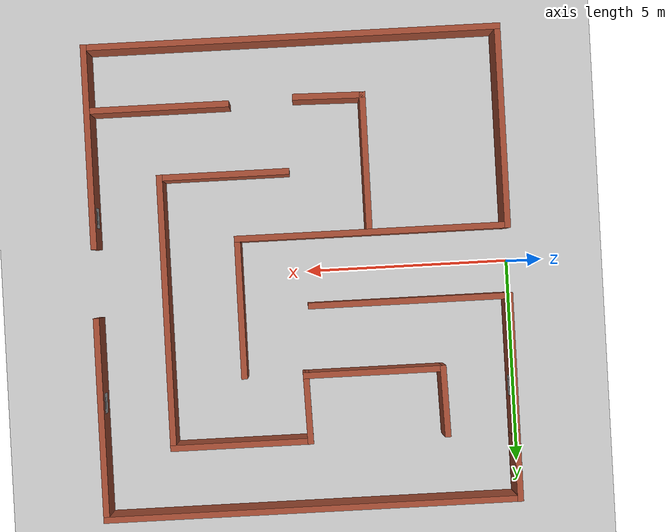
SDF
<sdf version="1.6">
 <world name="default">
  <light name="sun" type="directional">
   <pose>0 0 10 0 -0 0</pose>
   <diffuse>0.8 0.8 0.8 1</diffuse>
   <specular>0.2 0.2 0.2 1</specular>
   <attenuation>
    <range>1000</range>
    <constant>0.9</constant>
    <linear>0.01</linear>
    <quadratic>0.001</quadratic>
   </attenuation>
   <direction>-0.5 0.1 -0.9</direction>
  </light>
  <model name="ground_plane">
   <static>1</static>
   <link name="link">
    <collision name="collision">
     <geometry><plane><normal>0 0 1</normal><size>100 100</size></plane></geometry>
     <surface>
      <contact><collide_bitmask>65535</collide_bitmask></contact>
      <friction><ode><mu>100</mu><mu2>50</mu2></ode></friction>
     </surface>
    </collision>
    <visual name="visual">
     <cast_shadows>0</cast_shadows>
     <geometry><plane><normal>0 0 1</normal><size>100 100</size></plane></geometry>
     <material>
      <script><uri>file://media/materials/scripts/gazebo.material</uri><name>Gazebo/Grey</name></script>
     </material>
    </visual>
   </link>
  </model>
  <gravity>0 0 -9.8</gravity>
  <magnetic_field>6e-06 2.3e-05 -4.2e-05</magnetic_field>
  <atmosphere type="adiabatic"/>
  <physics name="default_physics" default="0" type="ode">
   <max_step_size>0.001</max_step_size>
   <real_time_factor>1</real_time_factor>
   <real_time_update_rate>1000</real_time_update_rate>
  </physics>
  <scene><ambient>0.4 0.4 0.4 1</ambient><background>0.7 0.7 0.7 1</background><shadows>1</shadows></scene>
  <spherical_coordinates>
   <surface_model>EARTH_WGS84</surface_model>
   <latitude_deg>0</latitude_deg>
   <longitude_deg>0</longitude_deg>
   <elevation>0</elevation>
   <heading_deg>0</heading_deg>
  </spherical_coordinates>
  <model name="Tt-Ros">
   <pose>5.12646 0.031 0 0 -0 0</pose>
   <link name="Wall_19">
    <collision name="Wall_19_Collision">
     <geometry><box><size>1.75 0.15 1</size></box></geometry>
     <pose>0 0 0.5 0 -0 0</pose>
    </collision>
    <visual name="Wall_19_Visual">
     <pose>0 0 0.5 0 -0 0</pose>
     <geometry><box><size>1.75 0.15 1</size></box></geometry>
     <material>
      <script><uri>file://media/materials/scripts/gazebo.material</uri><name>Gazebo/Bricks</name></script>
      <ambient>1 1 1 1</ambient>
     </material>
     <meta><layer>0</layer></meta>
    </visual>
    <pose>-5.032 4.964 0 0 -0 1.5708</pose>
   </link>
   <link name="Wall_20">
    <collision name="Wall_20_Collision">
     <geometry><box><size>10.25 0.15 1</size></box></geometry>
     <pose>0 0 0.5 0 -0 0</pose>
    </collision>
    <visual name="Wall_20_Visual">
     <pose>0 0 0.5 0 -0 0</pose>
     <geometry><box><size>10.25 0.15 1</size></box></geometry>
     <material>
      <script><uri>file://media/materials/scripts/gazebo.material</uri><name>Gazebo/Bricks</name></script>
      <ambient>1 1 1 1</ambient>
     </material>
     <meta><layer>0</layer></meta>
    </visual>
    <pose>0.018 5.764 0 0 -0 0</pose>
   </link>
   <link name="Wall_21">
    <collision name="Wall_21_Collision">
     <geometry><box><size>5 0.15 1</size></box></geometry>
     <pose>0 0 0.5 0 -0 0</pose>
    </collision>
    <visual name="Wall_21_Visual">
     <pose>0 0 0.5 0 -0 0</pose>
     <geometry><box><size>5 0.15 1</size></box></geometry>
     <material>
      <script><uri>file://media/materials/scripts/gazebo.material</uri><name>Gazebo/Bricks</name></script>
      <ambient>1 1 1 1</ambient>
     </material>
     <meta><layer>0</layer></meta>
    </visual>
    <pose>5.068 3.339 0 0 -0 -1.5708</pose>
   </link>
   <link name="Wall_23">
    <collision name="Wall_23_Collision">
     <geometry><box><size>5 0.15 1</size></box></geometry>
     <pose>0 0 0.5 0 -0 0</pose>
    </collision>
    <visual name="Wall_23_Visual">
     <pose>0 0 0.5 0 -0 0</pose>
     <geometry><box><size>5 0.15 1</size></box></geometry>
     <material>
      <script><uri>file://media/materials/scripts/gazebo.material</uri><name>Gazebo/Bricks</name></script>
      <ambient>1 1 1 1</ambient>
     </material>
     <meta><layer>0</layer></meta>
    </visual>
    <pose>5.032 -3.339 0 0 -0 -1.5708</pose>
   </link>
   <link name="Wall_24">
    <collision name="Wall_24_Collision">
     <geometry><box><size>10.25 0.15 1</size></box></geometry>
     <pose>0 0 0.5 0 -0 0</pose>
    </collision>
    <visual name="Wall_24_Visual">
     <pose>0 0 0.5 0 -0 0</pose>
     <geometry><box><size>10.25 0.15 1</size></box></geometry>
     <material>
      <script><uri>file://media/materials/scripts/gazebo.material</uri><name>Gazebo/Bricks</name></script>
      <ambient>1 1 1 1</ambient>
     </material>
     <meta><layer>0</layer></meta>
    </visual>
    <pose>-0.018 -5.764 0 0 -0 3.14159</pose>
   </link>
   <link name="Wall_27">
    <collision name="Wall_27_Collision">
     <geometry><box><size>5 0.15 1</size></box></geometry>
     <pose>0 0 0.5 0 -0 0</pose>
    </collision>
    <visual name="Wall_27_Visual">
     <pose>0 0 0.5 0 -0 0</pose>
     <geometry><box><size>5 0.15 1</size></box></geometry>
     <material>
      <script><uri>file://media/materials/scripts/gazebo.material</uri><name>Gazebo/Bricks</name></script>
      <ambient>1 1 1 1</ambient>
     </material>
     <meta><layer>0</layer></meta>
    </visual>
    <pose>-5.068 -3.339 0 0 -0 1.5708</pose>
   </link>
   <link name="Wall_28">
    <collision name="Wall_28_Collision">
     <geometry><box><size>6.75 0.15 1</size></box></geometry>
     <pose>0 0 0.5 0 -0 0</pose>
    </collision>
    <visual name="Wall_28_Visual">
     <pose>0 0 0.5 0 -0 0</pose>
     <geometry><box><size>6.75 0.15 1</size></box></geometry>
     <material>
      <script><uri>file://media/materials/scripts/gazebo.material</uri><name>Gazebo/Bricks</name></script>
      <ambient>1 1 1 1</ambient>
     </material>
     <meta><layer>0</layer></meta>
    </visual>
    <pose>-1.768 -0.914 0 0 -0 0</pose>
   </link>
   <link name="Wall_29">
    <collision name="Wall_29_Collision">
     <geometry><box><size>3.5 0.15 1</size></box></geometry>
     <pose>0 0 0.5 0 -0 0</pose>
    </collision>
    <visual name="Wall_29_Visual">
     <pose>0 0 0.5 0 -0 0</pose>
     <geometry><box><size>3.5 0.15 1</size></box></geometry>
     <material>
      <script><uri>file://media/materials/scripts/gazebo.material</uri><name>Gazebo/Bricks</name></script>
      <ambient>1 1 1 1</ambient>
     </material>
     <meta><layer>0</layer></meta>
    </visual>
    <pose>1.532 0.761 0 0 -0 1.5708</pose>
   </link>
   <link name="Wall_32">
    <collision name="Wall_32_Collision">
     <geometry><box><size>3.5 0.15 1</size></box></geometry>
     <pose>0 0 0.5 0 -0 0</pose>
    </collision>
    <visual name="Wall_32_Visual">
     <pose>0 0 0.5 0 -0 0</pose>
     <geometry><box><size>3.5 0.15 1</size></box></geometry>
     <material>
      <script><uri>file://media/materials/scripts/gazebo.material</uri><name>Gazebo/Bricks</name></script>
      <ambient>1 1 1 1</ambient>
     </material>
     <meta><layer>0</layer></meta>
    </visual>
    <pose>-5.032 2.489 0 0 -0 -1.5708</pose>
   </link>
   <link name="Wall_33">
    <collision name="Wall_33_Collision">
     <geometry><box><size>5 0.15 1</size></box></geometry>
     <pose>0 0 0.5 0 -0 0</pose>
    </collision>
    <visual name="Wall_33_Visual">
     <pose>0 0 0.5 0 -0 0</pose>
     <geometry><box><size>5 0.15 1</size></box></geometry>
     <material>
      <script><uri>file://media/materials/scripts/gazebo.material</uri><name>Gazebo/Bricks</name></script>
      <ambient>1 1 1 1</ambient>
     </material>
     <meta><layer>0</layer></meta>
    </visual>
    <pose>-2.607 0.814 0 0 -0 0</pose>
   </link>
   <link name="Wall_35">
    <collision name="Wall_35_Collision">
     <geometry><box><size>1.75117 0.15 1</size></box></geometry>
     <pose>0 0 0.5 0 -0 0</pose>
    </collision>
    <visual name="Wall_35_Visual">
     <pose>0 0 0.5 0 -0 0</pose>
     <geometry><box><size>1.75117 0.15 1</size></box></geometry>
     <material>
      <script><uri>file://media/materials/scripts/gazebo.material</uri><name>Gazebo/Bricks</name></script>
      <ambient>1 1 1 1</ambient>
     </material>
     <meta><layer>0</layer></meta>
    </visual>
    <pose>-3.3345 3.303 0 0 -0 -1.55142</pose>
   </link>
   <link name="Wall_36">
    <collision name="Wall_36_Collision">
     <geometry><box><size>3.49954 0.15 1</size></box></geometry>
     <pose>0 0 0.5 0 -0 0</pose>
    </collision>
    <visual name="Wall_36_Visual">
     <pose>0 0 0.5 0 -0 0</pose>
     <geometry><box><size>3.49954 0.15 1</size></box></geometry>
     <material>
      <script><uri>file://media/materials/scripts/gazebo.material</uri><name>Gazebo/Bricks</name></script>
      <ambient>1 1 1 1</ambient>
     </material>
     <meta><layer>0</layer></meta>
    </visual>
    <pose>-1.644 2.503 0 0 -0 0</pose>
   </link>
   <link name="Wall_37">
    <collision name="Wall_37_Collision">
     <geometry><box><size>1.75117 0.15 1</size></box></geometry>
     <pose>0 0 0.5 0 -0 0</pose>
    </collision>
    <visual name="Wall_37_Visual">
     <pose>0 0 0.5 0 -0 0</pose>
     <geometry><box><size>1.75117 0.15 1</size></box></geometry>
     <material>
      <script><uri>file://media/materials/scripts/gazebo.material</uri><name>Gazebo/Bricks</name></script>
      <ambient>1 1 1 1</ambient>
     </material>
     <meta><layer>0</layer></meta>
    </visual>
    <pose>0.0155 3.303 0 0 -0 1.59017</pose>
   </link>
   <link name="Wall_38">
    <collision name="Wall_38_Collision">
     <geometry><box><size>3.5 0.15 1</size></box></geometry>
     <pose>0 0 0.5 0 -0 0</pose>
    </collision>
    <visual name="Wall_38_Visual">
     <pose>0 0 0.5 0 -0 0</pose>
     <geometry><box><size>3.5 0.15 1</size></box></geometry>
     <material>
      <script><uri>file://media/materials/scripts/gazebo.material</uri><name>Gazebo/Bricks</name></script>
      <ambient>1 1 1 1</ambient>
     </material>
     <meta><layer>0</layer></meta>
    </visual>
    <pose>1.675 4.103 0 0 -0 0</pose>
   </link>
   <link name="Wall_39">
    <collision name="Wall_39_Collision">
     <geometry><box><size>6.75 0.15 1</size></box></geometry>
     <pose>0 0 0.5 0 -0 0</pose>
    </collision>
    <visual name="Wall_39_Visual">
     <pose>0 0 0.5 0 -0 0</pose>
     <geometry><box><size>6.75 0.15 1</size></box></geometry>
     <material>
      <script><uri>file://media/materials/scripts/gazebo.material</uri><name>Gazebo/Bricks</name></script>
      <ambient>1 1 1 1</ambient>
     </material>
     <meta><layer>0</layer></meta>
    </visual>
    <pose>3.35 0.803 0 0 -0 -1.5708</pose>
   </link>
   <link name="Wall_40">
    <collision name="Wall_40_Collision">
     <geometry><box><size>3.25 0.15 1</size></box></geometry>
     <pose>0 0 0.5 0 -0 0</pose>
    </collision>
    <visual name="Wall_40_Visual">
     <pose>0 0 0.5 0 -0 0</pose>
     <geometry><box><size>3.25 0.15 1</size></box></geometry>
     <material>
      <script><uri>file://media/materials/scripts/gazebo.material</uri><name>Gazebo/Bricks</name></script>
      <ambient>1 1 1 1</ambient>
     </material>
     <meta><layer>0</layer></meta>
    </visual>
    <pose>1.8 -2.497 0 0 -0 3.14159</pose>
   </link>
   <link name="Wall_42">
    <collision name="Wall_42_Collision">
     <geometry><box><size>3.43882 0.15 1</size></box></geometry>
     <pose>0 0 0.5 0 -0 0</pose>
    </collision>
    <visual name="Wall_42_Visual">
     <pose>0 0 0.5 0 -0 0</pose>
     <geometry><box><size>3.43882 0.15 1</size></box></geometry>
     <material>
      <script><uri>file://media/materials/scripts/gazebo.material</uri><name>Gazebo/Bricks</name></script>
      <ambient>1 1 1 1</ambient>
     </material>
     <meta><layer>0</layer></meta>
    </visual>
    <pose>-1.698 -2.61941 0 0 -0 -1.5708</pose>
   </link>
   <link name="Wall_43">
    <collision name="Wall_43_Collision">
     <geometry><box><size>1.75028 0.15 1</size></box></geometry>
     <pose>0 0 0.5 0 -0 0</pose>
    </collision>
    <visual name="Wall_43_Visual">
     <pose>0 0 0.5 0 -0 0</pose>
     <geometry><box><size>1.75028 0.15 1</size></box></geometry>
     <material>
      <script><uri>file://media/materials/scripts/gazebo.material</uri><name>Gazebo/Bricks</name></script>
      <ambient>1 1 1 1</ambient>
     </material>
     <meta><layer>0</layer></meta>
    </visual>
    <pose>-0.86741 -4.27882 0 0 -0 -0.018748</pose>
   </link>
   <link name="Wall_46">
    <collision name="Wall_46_Collision">
     <geometry><box><size>3.5 0.15 1</size></box></geometry>
     <pose>0 0 0.5 0 -0 0</pose>
    </collision>
    <visual name="Wall_46_Visual">
     <pose>0 0 0.5 0 -0 0</pose>
     <geometry><box><size>3.5 0.15 1</size></box></geometry>
     <material>
      <script><uri>file://media/materials/scripts/gazebo.material</uri><name>Gazebo/Bricks</name></script>
      <ambient>1 1 1 1</ambient>
     </material>
     <meta><layer>0</layer></meta>
    </visual>
    <pose>3.312 -4.217 0 0 -0 0</pose>
   </link>
   <static>1</static>
  </model>
  <model name="tag2">
   <static>1</static>
   <link name="tag2_link">
    <visual name="visual_ar_tag2">
     <geometry><mesh><uri>model://tag2/meshes/tag2.dae</uri></mesh></geometry>
    </visual>
    <collision name="collision_ar_tag1">
     <geometry><mesh><uri>model://tag2/meshes/tag2.dae</uri></mesh></geometry>
    </collision>
   </link>
   <pose>0.170654 3.06435 0.59395 3.14159 1.55167 3.14159</pose>
  </model>
  <model name="tag5">
   <static>1</static>
   <link name="tag5_link">
    <visual name="visual_ar_tag5">
     <geometry><mesh><uri>model://tag5/meshes/tag5.dae</uri></mesh></geometry>
    </visual>
    <collision name="collision_ar_tag5">
     <geometry><mesh><uri>model://tag5/meshes/tag5.dae</uri></mesh></geometry>
    </collision>
   </link>
   <pose>10.1041 2.97111 0.661132 3.14159 -1.56746 3.14159</pose>
  </model>
  <model name="tag7">
   <static>1</static>
   <link name="tag7_link">
    <visual name="visual_ar_tag7">
     <geometry><mesh><uri>model://tag7/meshes/tag7.dae</uri></mesh></geometry>
    </visual>
    <collision name="collision_ar_tag7">
     <geometry><mesh><uri>model://tag7/meshes/tag7.dae</uri></mesh></geometry>
    </collision>
   </link>
   <pose>7.73386 -2.54588 0.596425 1.56046 -0 0</pose>
  </model>
  <model name="tag8">
   <static>1</static>
   <link name="tag8_link">
    <visual name="visual_ar_tag8">
     <geometry><mesh><uri>model://tag8/meshes/tag8.dae</uri></mesh></geometry>
    </visual>
    <collision name="collision_ar_tag8">
     <geometry><mesh><uri>model://tag8/meshes/tag8.dae</uri></mesh></geometry>
    </collision>
   </link>
   <pose>10.0786 -1.58045 0.576192 3.14159 -1.55745 3.14159</pose>
  </model>
 </world>
</sdf>
